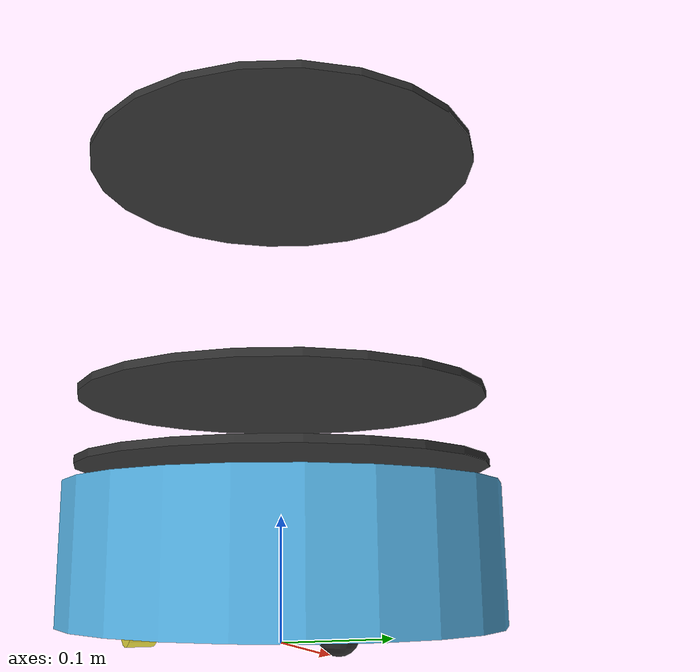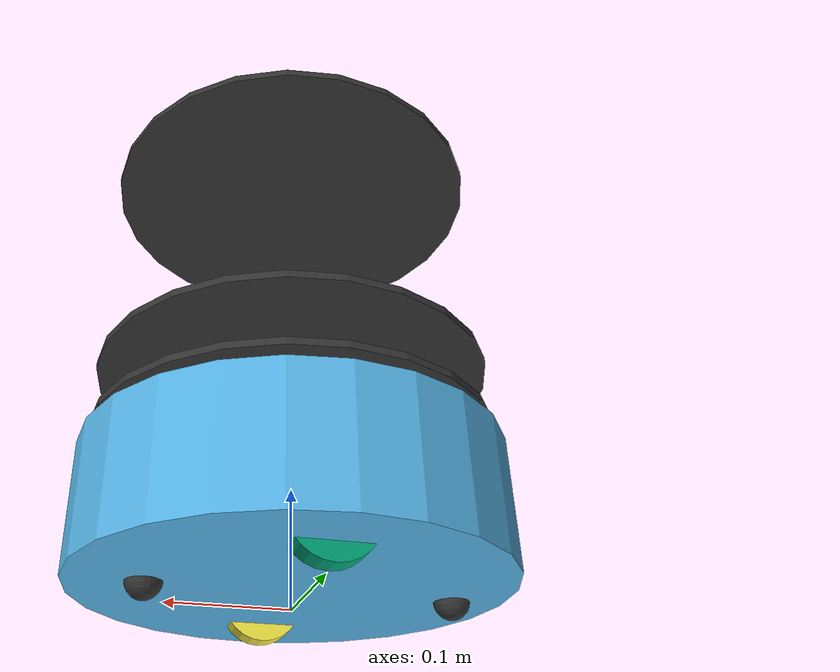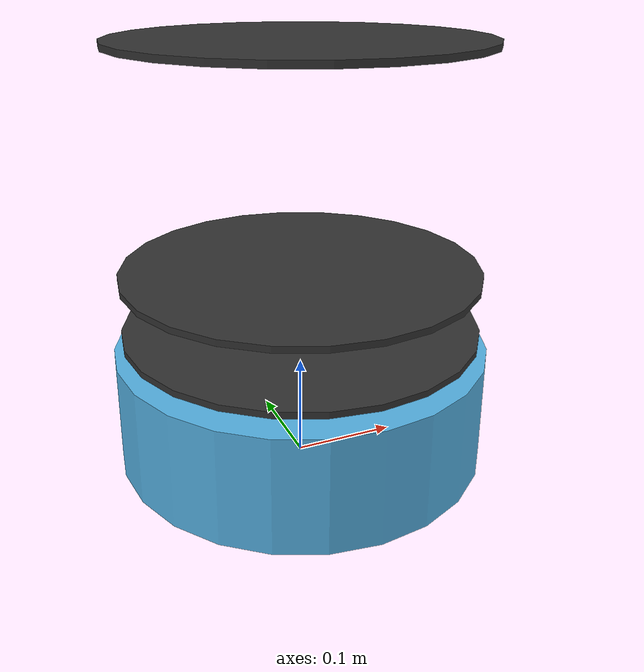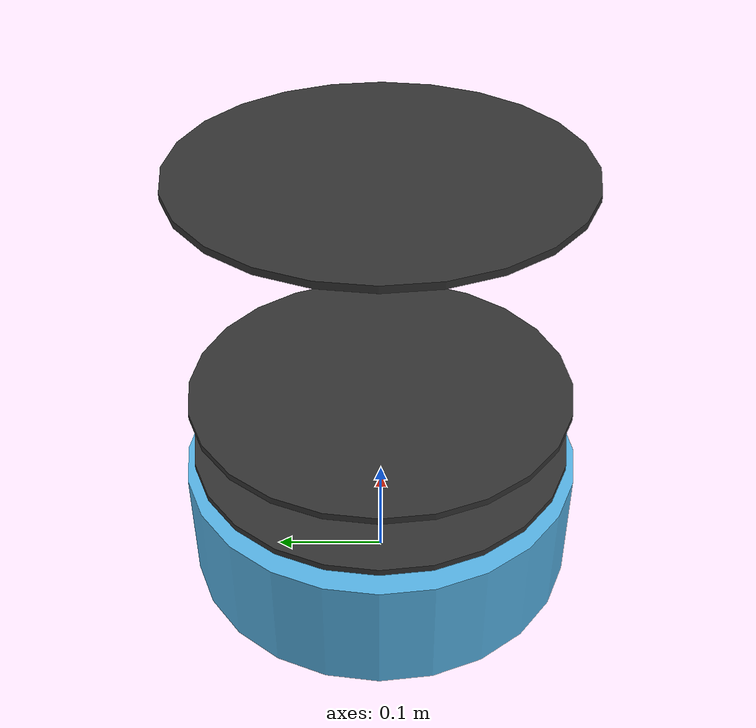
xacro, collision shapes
<?xml version="1.0"?>
<robot xmlns:xacro="http://www.ros.org/wiki/xacro" name="kobuki">
  <xacro:arg name="wheel_odom_topic" default="odom"/>
  <xacro:arg name="ros_namespace" default="/"/>
  <xacro:arg name="frame_prefix" default=""/>
  <xacro:arg name="lidar_horizontal_samples" default="900"/>
  <xacro:arg name="lidar_vertical_samples" default="40"/>
  <xacro:property name="wheel_radius" value="0.035"/>
  <xacro:property name="wheel_width" value="0.0206"/>
  <xacro:property name="wheel_separation" value="0.230"/>
  <xacro:property name="wheel_axle_z" value="0.025"/>
  <xacro:property name="wheel_contact_z" value="${wheel_axle_z - wheel_radius}"/>
  <xacro:property name="caster_radius" value="0.015"/>
  <xacro:property name="caster_clearance" value="0.0005"/>

  <material name="black">
    <color rgba="0.03 0.03 0.03 1"/>
  </material>
  <material name="dark_grey">
    <color rgba="0.20 0.20 0.20 1"/>
  </material>
  <material name="aluminium">
    <color rgba="0.80 0.80 0.80 1"/>
  </material>
  <material name="orange">
    <color rgba="1.0 0.42 0.04 1"/>
  </material>

  <link name="base_footprint"/>
  <joint name="base_joint" type="fixed">
    <origin xyz="0 0 0.0102"/>
    <parent link="base_footprint"/>
    <child link="base_link"/>
  </joint>

  <link name="base_link">
    <visual>
      <origin xyz="0.001 0 0.05199"/>
      <geometry>
        <mesh filename="package://sim_kobuki/meshes/kobuki/main_body.dae"/>
      </geometry>
    </visual>
    <collision>
      <origin xyz="0 0 0.05949"/>
      <geometry>
        <cylinder radius="0.178" length="0.10938"/>
      </geometry>
    </collision>
    <inertial>
      <origin xyz="0.01 0 0"/>
      <mass value="2.4"/>
      <inertia ixx="0.019995" ixy="0" ixz="0"
               iyy="0.019995" iyz="0" izz="0.03675"/>
    </inertial>
  </link>

  <xacro:macro name="wheel" params="side sign">
    <joint name="wheel_${side}_joint" type="continuous">
      <parent link="base_link"/>
      <child link="wheel_${side}_link"/>
      <origin xyz="0 ${sign * wheel_separation / 2} ${wheel_axle_z}"
              rpy="-1.5707963267948966 0 0"/>
      <axis xyz="0 0 1"/>
      <limit effort="20" velocity="20"/>
      <dynamics damping="0.05" friction="0.0"/>
    </joint>
    <link name="wheel_${side}_link">
      <visual>
        <geometry>
          <mesh filename="package://sim_kobuki/meshes/kobuki/wheel.dae"/>
        </geometry>
      </visual>
      <collision>
        <geometry>
          <cylinder radius="${wheel_radius}" length="${wheel_width}"/>
        </geometry>
      </collision>
      <inertial>
        <mass value="0.1"/>
        <inertia ixx="0.00005" ixy="0" ixz="0"
                 iyy="0.00005" iyz="0" izz="0.00006"/>
      </inertial>
    </link>
  </xacro:macro>

  <xacro:wheel side="left" sign="1"/>
  <xacro:wheel side="right" sign="-1"/>

  <xacro:macro name="caster" params="name x">
    <joint name="caster_${name}_joint" type="fixed">
      <parent link="base_link"/>
      <child link="caster_${name}_link"/>
      <origin xyz="${x} 0 ${wheel_contact_z + caster_radius + caster_clearance}"/>
    </joint>
    <link name="caster_${name}_link">
      <visual>
        <geometry><sphere radius="${caster_radius}"/></geometry>
        <material name="dark_grey"/>
      </visual>
      <collision>
        <geometry><sphere radius="${caster_radius}"/></geometry>
      </collision>
      <inertial>
        <mass value="0.01"/>
        <inertia ixx="0.000001" ixy="0" ixz="0"
                 iyy="0.000001" iyz="0" izz="0.000001"/>
      </inertial>
    </link>
    <gazebo reference="caster_${name}_link">
      <mu1>0.01</mu1>
      <mu2>0.01</mu2>
    </gazebo>
  </xacro:macro>

  <xacro:caster name="front" x="0.115"/>
  <xacro:caster name="rear" x="-0.135"/>

  <!-- Hexagon standoffs are visual only: they belong to the plate link, so they
       add no bodies or collision shapes, but the lidar still sees them. -->
  <xacro:macro name="standoffs" params="length">
    <xacro:property name="offset" value="${-(length + 0.006) / 2}"/>
    <xacro:macro name="standoff" params="x y">
      <visual>
        <origin xyz="${x} ${y} ${offset}"/>
        <geometry><cylinder radius="0.0065" length="${length}"/></geometry>
        <material name="aluminium"/>
      </visual>
    </xacro:macro>
    <xacro:standoff x="0.1256" y="0.0725"/>
    <xacro:standoff x="0.0" y="0.145"/>
    <xacro:standoff x="-0.1256" y="0.0725"/>
    <xacro:standoff x="-0.1256" y="-0.0725"/>
    <xacro:standoff x="0.0" y="-0.145"/>
    <xacro:standoff x="0.1256" y="-0.0725"/>
  </xacro:macro>

  <xacro:macro name="plate" params="name height standoff_length">
    <joint name="plate_${name}_joint" type="fixed">
      <origin xyz="0 0 ${height}"/>
      <parent link="base_link"/>
      <child link="plate_${name}_link"/>
    </joint>
    <link name="plate_${name}_link">
      <visual>
        <geometry><cylinder radius="0.170" length="0.006"/></geometry>
        <material name="dark_grey"/>
      </visual>
      <xacro:standoffs length="${standoff_length}"/>
      <collision>
        <geometry><cylinder radius="0.170" length="0.006"/></geometry>
      </collision>
      <inertial>
        <mass value="0.52"/>
        <inertia ixx="0.003328" ixy="0" ixz="0"
                 iyy="0.003328" iyz="0" izz="0.006656"/>
      </inertial>
    </link>
  </xacro:macro>

  <xacro:plate name="bottom" height="0.1306" standoff_length="0.013"/>
  <xacro:plate name="middle" height="0.1874" standoff_length="0.0508"/>
  <xacro:plate name="top" height="0.3966" standoff_length="0.2032"/>

  <joint name="livox_joint" type="fixed">
    <origin xyz="0 0 -0.033"
            rpy="3.141592653589793 0 -1.5707963267948966"/>
    <parent link="plate_top_link"/>
    <child link="livox_frame"/>
  </joint>
  <link name="livox_frame">
    <visual>
      <geometry><cylinder radius="0.0325" length="0.060"/></geometry>
      <material name="orange"/>
    </visual>
    <inertial>
      <mass value="0.265"/>
      <inertia ixx="0.00015" ixy="0" ixz="0"
               iyy="0.00015" iyz="0" izz="0.00014"/>
    </inertial>
  </link>

  <gazebo reference="wheel_left_link">
    <mu1>1.4</mu1>
    <mu2>1.2</mu2>
  </gazebo>
  <gazebo reference="wheel_right_link">
    <mu1>1.4</mu1>
    <mu2>1.2</mu2>
  </gazebo>

  <!-- Gazebo-only body contact sensor for match evaluation. Wheels and floor
       contacts are intentionally excluded. -->
  <gazebo reference="base_link">
    <sensor name="body_contact" type="contact">
      <always_on>true</always_on>
      <update_rate>20</update_rate>
      <!-- Gazebo lumps base_link's fixed joint into base_footprint when the
           URDF is spawned; this is the resulting collision name. -->
      <contact><collision>base_footprint_fixed_joint_lump__base_link_collision</collision></contact>
      <plugin name="body_bumper" filename="libgazebo_ros_bumper.so">
        <ros>
          <namespace>$(arg ros_namespace)</namespace>
          <remapping>bumper_states:=body_contacts</remapping>
        </ros>
        <frame_name>$(arg frame_prefix)base_link</frame_name>
      </plugin>
    </sensor>
  </gazebo>

  <gazebo reference="livox_frame">
    <sensor name="livox_mid360" type="ray">
      <always_on>true</always_on>
      <update_rate>10</update_rate>
      <visualize>false</visualize>
      <ray>
        <scan>
          <horizontal>
            <samples>$(arg lidar_horizontal_samples)</samples>
            <resolution>1</resolution>
            <min_angle>-3.14159</min_angle>
            <max_angle>3.14159</max_angle>
          </horizontal>
          <vertical>
            <samples>$(arg lidar_vertical_samples)</samples>
            <resolution>1</resolution>
            <min_angle>-0.1222</min_angle>  <!-- -7 град -->
            <max_angle>0.9075</max_angle>   <!-- +52 град, как у Mid-360 -->
          </vertical>
        </scan>
        <range>
          <min>0.10</min>
          <max>40.0</max>
          <resolution>0.01</resolution>
        </range>
        <noise>
          <type>gaussian</type>
          <mean>0.0</mean>
          <stddev>0.02</stddev>
        </noise>
      </ray>
      <plugin name="livox_lidar_controller" filename="libgazebo_ros_ray_sensor.so">
        <ros>
          <namespace>$(arg ros_namespace)</namespace>
          <remapping>~/out:=livox/lidar</remapping>
        </ros>
        <output_type>sensor_msgs/PointCloud2</output_type>
        <frame_name>$(arg frame_prefix)livox_frame</frame_name>
      </plugin>
    </sensor>

    <!-- У настоящего Mid-360 IMU встроен в лидар, поэтому сенсор живёт в том
         же фрейме. -->
    <sensor name="livox_imu" type="imu">
      <always_on>true</always_on>
      <update_rate>200</update_rate>
      <imu>
        <angular_velocity>
          <x><noise type="gaussian"><mean>0.0</mean><stddev>0.0009</stddev></noise></x>
          <y><noise type="gaussian"><mean>0.0</mean><stddev>0.0009</stddev></noise></y>
          <z><noise type="gaussian"><mean>0.0</mean><stddev>0.0009</stddev></noise></z>
        </angular_velocity>
        <linear_acceleration>
          <x><noise type="gaussian"><mean>0.0</mean><stddev>0.021</stddev></noise></x>
          <y><noise type="gaussian"><mean>0.0</mean><stddev>0.021</stddev></noise></y>
          <z><noise type="gaussian"><mean>0.0</mean><stddev>0.021</stddev></noise></z>
        </linear_acceleration>
      </imu>
      <plugin name="livox_imu_controller" filename="libgazebo_ros_imu_sensor.so">
        <ros>
          <namespace>$(arg ros_namespace)</namespace>
          <remapping>~/out:=livox/imu</remapping>
        </ros>
        <frame_name>$(arg frame_prefix)livox_frame</frame_name>
      </plugin>
    </sensor>
  </gazebo>

  <gazebo>
    <plugin name="diff_drive_controller" filename="libgazebo_ros_diff_drive.so">
      <ros>
        <namespace>$(arg ros_namespace)</namespace>
        <remapping>odom:=$(arg wheel_odom_topic)</remapping>
      </ros>
      <left_joint>wheel_left_joint</left_joint>
      <right_joint>wheel_right_joint</right_joint>
      <wheel_separation>${wheel_separation}</wheel_separation>
      <wheel_diameter>${wheel_radius * 2}</wheel_diameter>
      <max_wheel_torque>2.0</max_wheel_torque>
      <max_wheel_acceleration>2.0</max_wheel_acceleration>
      <publish_odom>true</publish_odom>
      <publish_odom_tf>true</publish_odom_tf>
      <publish_wheel_tf>false</publish_wheel_tf>
      <odometry_frame>$(arg frame_prefix)odom</odometry_frame>
      <robot_base_frame>$(arg frame_prefix)base_footprint</robot_base_frame>
      <update_rate>50</update_rate>
    </plugin>

    <plugin name="joint_state_publisher" filename="libgazebo_ros_joint_state_publisher.so">
      <ros>
        <namespace>$(arg ros_namespace)</namespace>
        <remapping>~/out:=joint_states</remapping>
      </ros>
      <update_rate>50</update_rate>
      <joint_name>wheel_left_joint</joint_name>
      <joint_name>wheel_right_joint</joint_name>
    </plugin>

    <plugin name="ground_truth_p3d" filename="libgazebo_ros_p3d.so">
      <ros>
        <namespace>$(arg ros_namespace)</namespace>
        <remapping>odom:=localization/pose</remapping>
      </ros>
      <body_name>base_footprint</body_name>
      <frame_name>world</frame_name>
      <update_rate>50</update_rate>
      <gaussian_noise>0.0</gaussian_noise>
    </plugin>
  </gazebo>
</robot>
